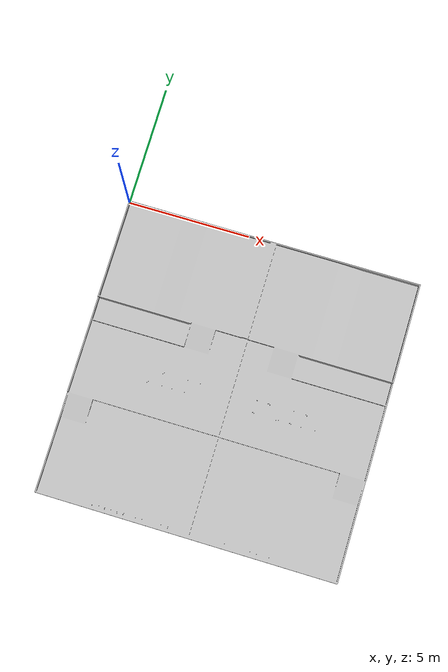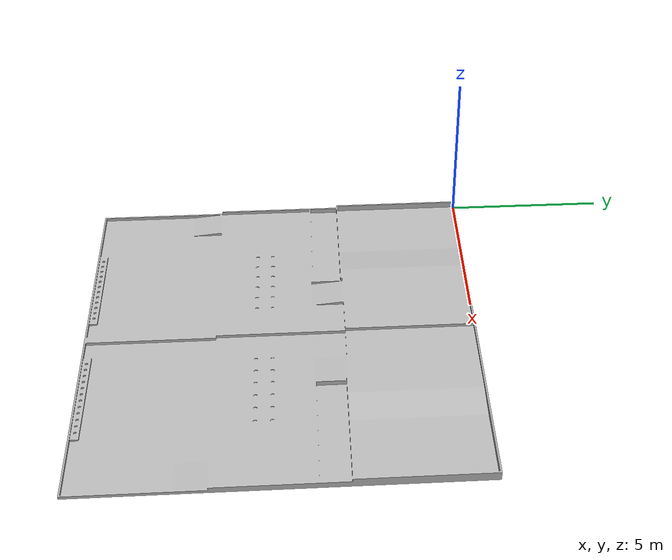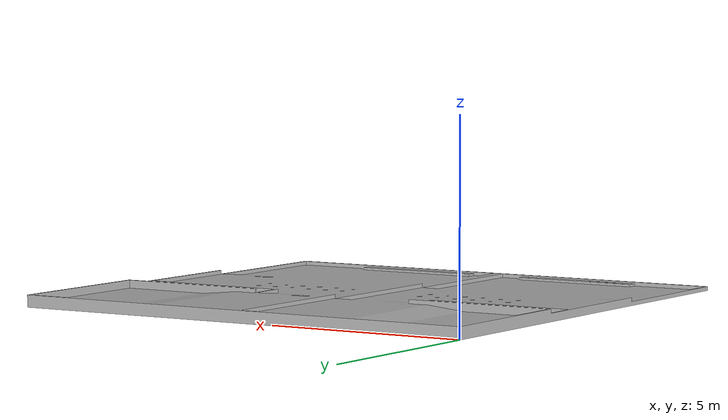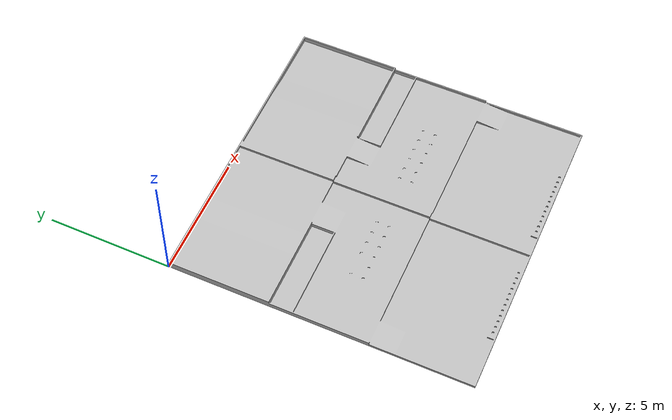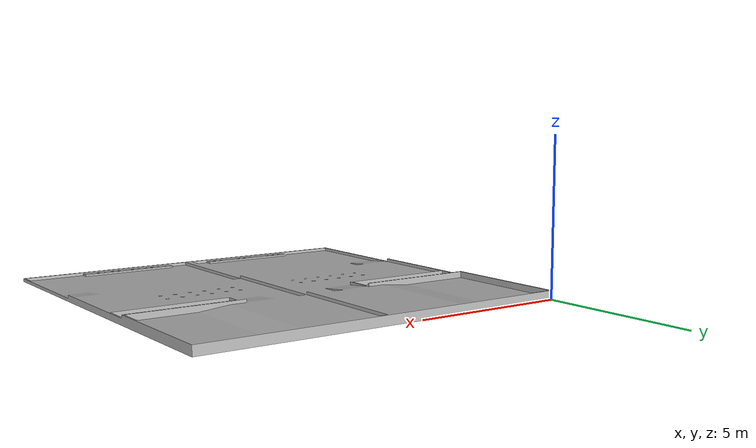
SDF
<?xml version="1.0" ?>
<sdf version="1.6">
  <model name="robocon2023">
    <static>true</static>
    <link name="link">
      <collision name="collision">
        <geometry>
          <mesh>
            <uri>model://robocon2023/meshs/robotcon2023.STL</uri>
          </mesh>
        </geometry>
      </collision>
      <visual name="visual">
        <geometry>
          <mesh>
            <uri>model://robocon2023/meshs/robotcon2023.STL</uri>
          </mesh>
        </geometry>
      </visual>
    </link>
  </model>
</sdf>
